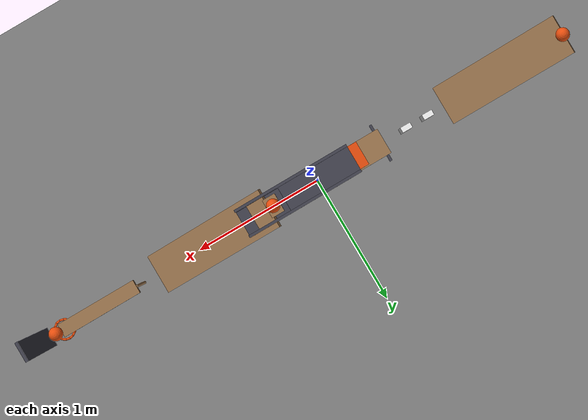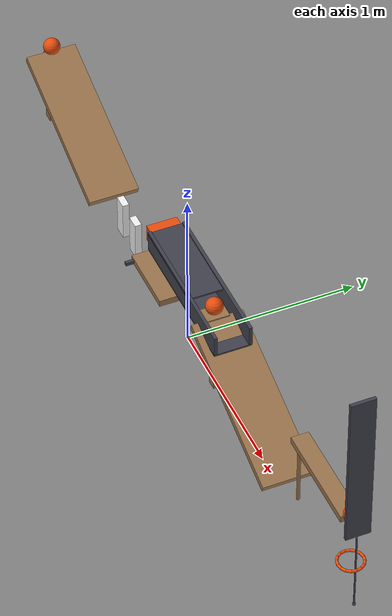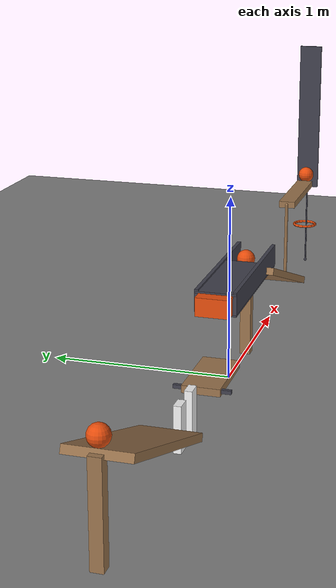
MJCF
<mujoco model="revised_passive_ramp_domino_lever_chain">
  <compiler angle="radian"/>
  <option timestep="0.002"/>
  <worldbody>
    <geom name="floor" type="plane" size="8 8 0.1" friction="0.7 0 0"/>
    <body name="ramp1">
      <geom name="ramp1_deck" type="box" pos="-1.53015 0 0.32101" size="0.5 0.15 0.02" euler="0 0.349066 0" friction="0.7 0 0" solref="0.01 1" rgba="0.6 0.45 0.3 1"/>
      <geom name="ramp1_leg" type="box" pos="-2 0 0.24601" size="0.03 0.03 0.24601" friction="0.7 0 0" solref="0.01 1" rgba="0.6 0.45 0.3 1"/>
    </body>
    <body name="ball1" pos="-1.97606 0 0.557799">
      <freejoint/>
      <geom name="ball1" type="sphere" pos="0 0 0" size="0.05" mass="0.2" condim="6" friction="0.7 0 0" solref="0.01 1" rgba="0.9 0.3 0.05 1"/>
    </body>
    <body name="domino1" pos="-0.920307 0 0.12">
      <freejoint/>
      <geom name="domino1" type="box" pos="0 0 0" size="0.04 0.02 0.12" mass="0.25" friction="0.7 0 0" solref="0.01 1" rgba="0.95 0.95 0.95 1"/>
    </body>
    <body name="domino2" pos="-0.740307 0 0.12">
      <freejoint/>
      <geom name="domino2" type="box" pos="0 0 0" size="0.04 0.02 0.12" mass="0.25" friction="0.7 0 0" solref="0.01 1" rgba="0.95 0.95 0.95 1"/>
    </body>
    <body name="flap1" pos="-0.560307 0 0.15">
      <joint name="flap_hinge" type="hinge" pos="0 0 0" axis="0 1 0" limited="true" range="-1.5708 -0.436332" damping="0.04"/>
      <geom name="flap1" type="box" pos="0.2 0 0" size="0.2 0.1 0.02" mass="0.3" friction="0.7 0 0" solref="0.01 1" rgba="0.6 0.45 0.3 1"/>
      <geom name="flap drive ballast" type="box" pos="0.03 0 0" size="0.01 0.15 0.01" mass="600" friction="0.7 0 0" solref="0.01 1" rgba="0.25 0.25 0.3 1"/>
    </body>
    <body name="cart track">
      <geom name="cart track" type="box" pos="0.159693 0 0.458304" size="0.45 0.11 0.005" friction="0.7 0 0" solref="0.01 1" rgba="0.25 0.25 0.3 1"/>
    </body>
    <body name="cart guide left">
      <geom name="cart guide left" type="box" pos="0.159693 0.101 0.523304" size="0.45 0.01 0.06" friction="0.7 0 0" solref="0.01 1" rgba="0.25 0.25 0.3 1"/>
    </body>
    <body name="cart guide right">
      <geom name="cart guide right" type="box" pos="0.159693 -0.101 0.523304" size="0.45 0.01 0.06" friction="0.7 0 0" solref="0.01 1" rgba="0.25 0.25 0.3 1"/>
    </body>
    <body name="cart guide roof">
      <geom name="cart guide roof" type="box" pos="-0.0103074 0 0.569304" size="0.28 0.111 0.005" friction="0.7 0 0" solref="0.01 1" rgba="0.25 0.25 0.3 1"/>
    </body>
    <body name="cart1" pos="-0.250307 0 0.513304">
      <freejoint/>
      <geom name="cart1" type="box" pos="0 0 0" size="0.11 0.09 0.05" mass="0.5" friction="0.7 0 0" solref="0.01 1" rgba="0.9 0.3 0.05 1"/>
    </body>
    <body name="ball2 cradle">
      <geom name="ball2 cradle" type="box" pos="0.359693 0 0.508304" size="0.05 0.07 0.005" friction="0.7 0 0" solref="0.01 1" rgba="0.6 0.45 0.3 1"/>
    </body>
    <body name="ramp2">
      <geom name="ramp2_deck" type="box" pos="0.859539 0 0.32101" size="0.5 0.15 0.02" euler="0 0.349066 0" friction="0.7 0 0" solref="0.01 1" rgba="0.6 0.45 0.3 1"/>
      <geom name="ramp2_leg" type="box" pos="0.389693 0 0.24601" size="0.03 0.03 0.24601" friction="0.7 0 0" solref="0.01 1" rgba="0.6 0.45 0.3 1"/>
    </body>
    <body name="ball2" pos="0.359693 0 0.563304">
      <freejoint/>
      <geom name="ball2" type="sphere" pos="0 0 0" size="0.05" mass="0.2" condim="6" friction="0.7 0 0" solref="0.01 1" rgba="0.9 0.3 0.05 1"/>
    </body>
    <body name="lever1" pos="1.74939 0 0.6">
      <joint name="lever_hinge" type="hinge" pos="0 0 0" axis="0 1 0" limited="true" range="-0.785398 0" damping="0.04"/>
      <geom name="lever1" type="box" pos="0 0 0" size="0.3 0.05 0.02" mass="0.49" friction="0.7 0 0" solref="0.01 1" rgba="0.6 0.45 0.3 1"/>
      <geom name="lever striker" type="capsule" size="0.01" fromto="-0.3 0 0 -0.3 0 -0.46" mass="0.01" friction="0.7 0 0" solref="0.01 1" rgba="0.6 0.45 0.3 1"/>
    </body>
    <body name="ball3" pos="2.08439 0 0.655707">
      <freejoint/>
      <geom name="ball3" type="sphere" pos="0 0 0" size="0.05" mass="0.2" condim="6" friction="0.7 0 0" solref="0.01 1" rgba="0.9 0.3 0.05 1"/>
    </body>
    <body name="ball3 vertical guide">
      <geom name="ball3 vertical guide" type="box" pos="2.14439 0 1.04" size="0.01 0.07 0.48" friction="0.7 0 0" solref="0.01 1" rgba="0.25 0.25 0.3 1"/>
    </body>
    <body name="ring1">
      <geom name="ring1_00" type="capsule" size="0.008" fromto="2.15639 0 0.305707 2.1509 0.0275532 0.305707" friction="0.7 0 0" solref="0.01 1" rgba="0.9 0.3 0.05 1"/>
      <geom name="ring1_01" type="capsule" size="0.008" fromto="2.1509 0.0275532 0.305707 2.1353 0.0509117 0.305707" friction="0.7 0 0" solref="0.01 1" rgba="0.9 0.3 0.05 1"/>
      <geom name="ring1_02" type="capsule" size="0.008" fromto="2.1353 0.0509117 0.305707 2.11194 0.0665193 0.305707" friction="0.7 0 0" solref="0.01 1" rgba="0.9 0.3 0.05 1"/>
      <geom name="ring1_03" type="capsule" size="0.008" fromto="2.11194 0.0665193 0.305707 2.08439 0.072 0.305707" friction="0.7 0 0" solref="0.01 1" rgba="0.9 0.3 0.05 1"/>
      <geom name="ring1_04" type="capsule" size="0.008" fromto="2.08439 0.072 0.305707 2.05683 0.0665193 0.305707" friction="0.7 0 0" solref="0.01 1" rgba="0.9 0.3 0.05 1"/>
      <geom name="ring1_05" type="capsule" size="0.008" fromto="2.05683 0.0665193 0.305707 2.03347 0.0509117 0.305707" friction="0.7 0 0" solref="0.01 1" rgba="0.9 0.3 0.05 1"/>
      <geom name="ring1_06" type="capsule" size="0.008" fromto="2.03347 0.0509117 0.305707 2.01787 0.0275532 0.305707" friction="0.7 0 0" solref="0.01 1" rgba="0.9 0.3 0.05 1"/>
      <geom name="ring1_07" type="capsule" size="0.008" fromto="2.01787 0.0275532 0.305707 2.01239 8.81746e-18 0.305707" friction="0.7 0 0" solref="0.01 1" rgba="0.9 0.3 0.05 1"/>
      <geom name="ring1_08" type="capsule" size="0.008" fromto="2.01239 8.81746e-18 0.305707 2.01787 -0.0275532 0.305707" friction="0.7 0 0" solref="0.01 1" rgba="0.9 0.3 0.05 1"/>
      <geom name="ring1_09" type="capsule" size="0.008" fromto="2.01787 -0.0275532 0.305707 2.03347 -0.0509117 0.305707" friction="0.7 0 0" solref="0.01 1" rgba="0.9 0.3 0.05 1"/>
      <geom name="ring1_10" type="capsule" size="0.008" fromto="2.03347 -0.0509117 0.305707 2.05683 -0.0665193 0.305707" friction="0.7 0 0" solref="0.01 1" rgba="0.9 0.3 0.05 1"/>
      <geom name="ring1_11" type="capsule" size="0.008" fromto="2.05683 -0.0665193 0.305707 2.08439 -0.072 0.305707" friction="0.7 0 0" solref="0.01 1" rgba="0.9 0.3 0.05 1"/>
      <geom name="ring1_12" type="capsule" size="0.008" fromto="2.08439 -0.072 0.305707 2.11194 -0.0665193 0.305707" friction="0.7 0 0" solref="0.01 1" rgba="0.9 0.3 0.05 1"/>
      <geom name="ring1_13" type="capsule" size="0.008" fromto="2.11194 -0.0665193 0.305707 2.1353 -0.0509117 0.305707" friction="0.7 0 0" solref="0.01 1" rgba="0.9 0.3 0.05 1"/>
      <geom name="ring1_14" type="capsule" size="0.008" fromto="2.1353 -0.0509117 0.305707 2.1509 -0.0275532 0.305707" friction="0.7 0 0" solref="0.01 1" rgba="0.9 0.3 0.05 1"/>
      <geom name="ring1_15" type="capsule" size="0.008" fromto="2.1509 -0.0275532 0.305707 2.15639 -1.76349e-17 0.305707" friction="0.7 0 0" solref="0.01 1" rgba="0.9 0.3 0.05 1"/>
    </body>
    <body name="pendulum1" pos="2.14039 0 0.534166">
      <joint name="pendulum_hinge" type="hinge" pos="0 0 0" axis="0 1 0" damping="0.04"/>
      <geom name="pendulum1" type="sphere" pos="0 0 -0.5" size="0.01" mass="0.34" friction="0.7 0 0" solref="0.01 1" rgba="0.25 0.25 0.3 1"/>
      <geom name="pendulum rod" type="capsule" size="0.005" fromto="0 0 0 0 0 -0.49" mass="0.01" friction="0.7 0 0" solref="0.01 1" rgba="0.25 0.25 0.3 1"/>
    </body>
  </worldbody>
  <keyframe>
    <key name="start" qpos="-1.97606 0 0.557799 1 0 0 0 -0.920307 0 0.12 1 0 0 0 -0.740307 0 0.12 1 0 0 0 -1.5708 -0.250307 0 0.513304 1 0 0 0 0.359693 0 0.563304 1 0 0 0 0 2.08439 0 0.655707 1 0 0 0 0" qvel="0 0 0 0 0 0 0 0 0 0 0 0 0 0 0 0 0 0 0 0 0 0 0 0 0 0 0 0 0 0 0 0 0 0 0 0 0 0 0"/>
  </keyframe>
</mujoco>
